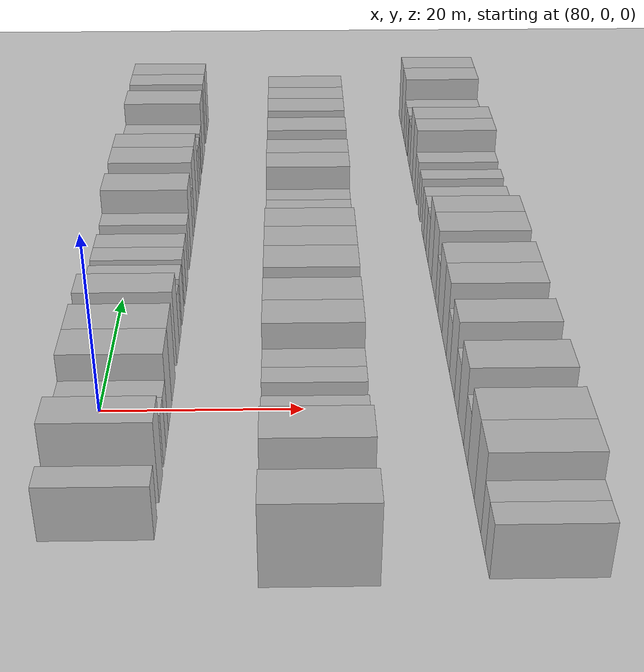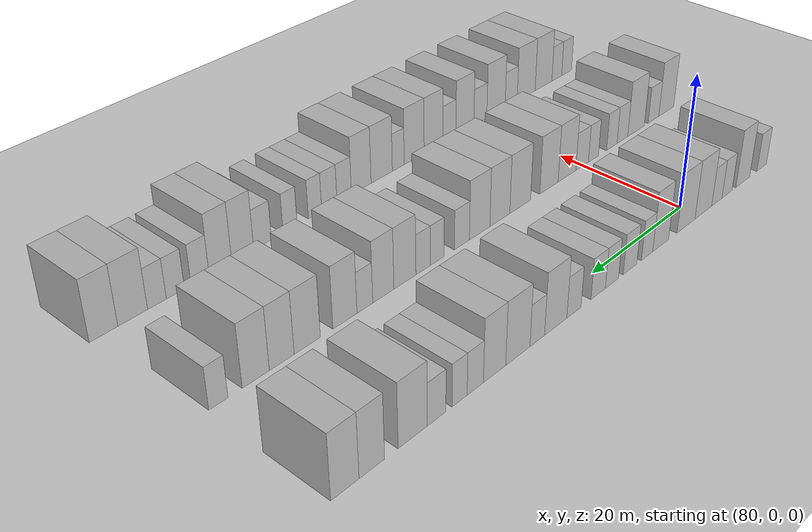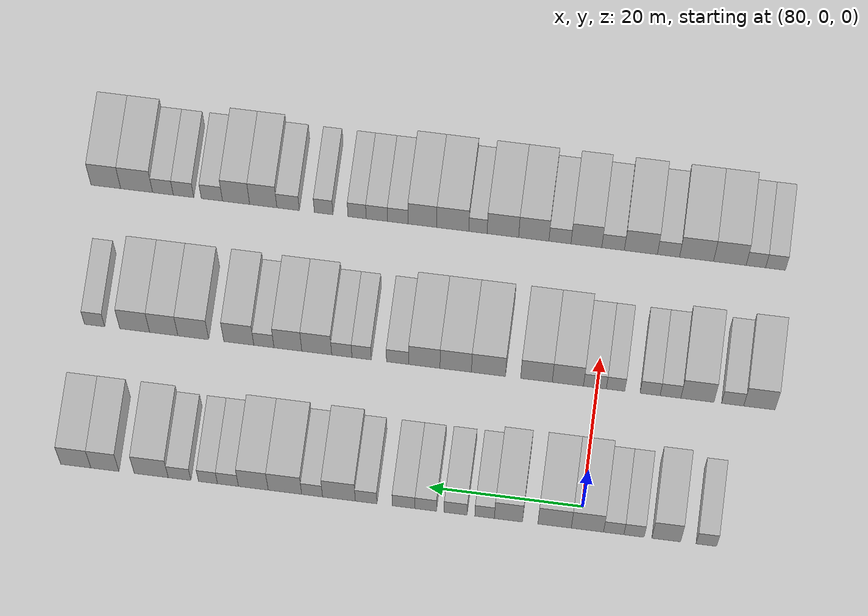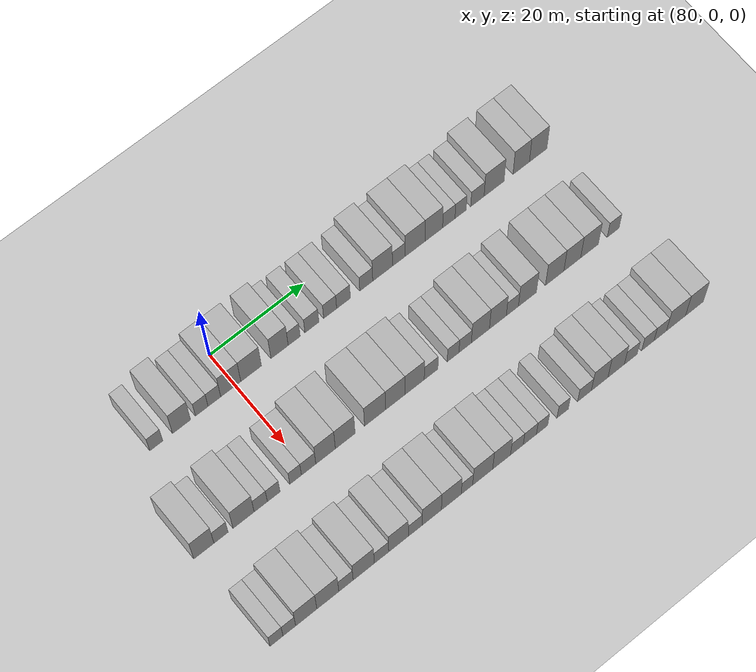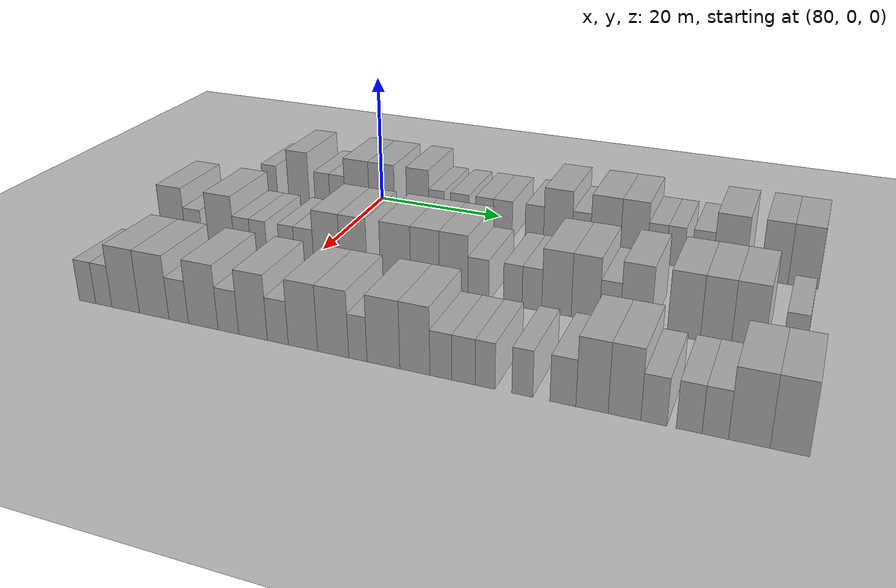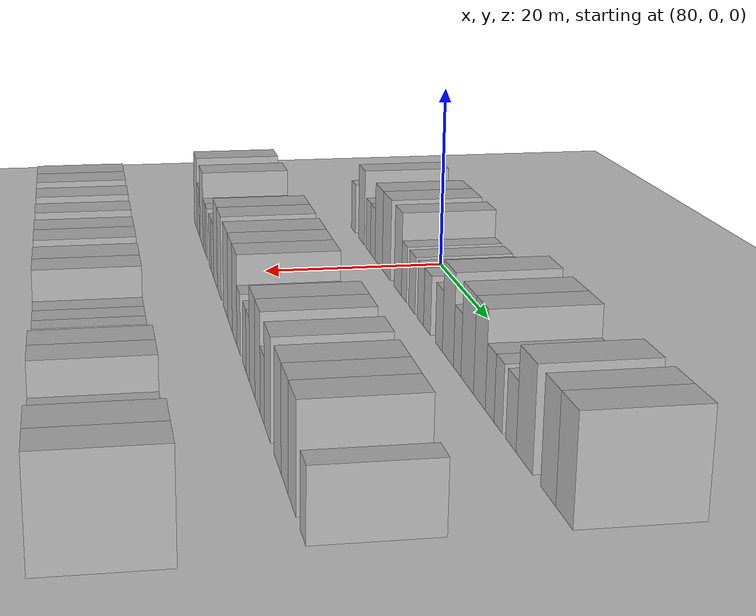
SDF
<sdf version="1.6">
 <world name="default">
  <include>
   <name>ground_plane_2</name>
   <uri>model://HANNAS_ground_plane</uri>
   <pose>100 0 0  0 0 0</pose>
  </include>
  <model name="building_618">
   <static>1</static>
   <pose>82.0000 -16.3886 0 0.000000 0.000000 0.000000</pose>
   <link name="link">
    <pose>0 0 3.00 0 0 0</pose>
    <collision name="collision"><geometry><box><size>10.0000 2.6706 6.0000</size></box></geometry></collision>
    <visual name="visual">
     <cast_shadows>0</cast_shadows>
     <geometry><box><size>10.0000 2.6706 6.0000</size></box></geometry>
     <material>
      <script>
       <uri>model://HANNAS_wall/materials/scripts</uri>
       <uri>model://HANNAS_wall/materials/textures</uri>
       <name>vrc/HANNAS_wall</name>
      </script>
     </material>
    </visual>
   </link>
  </model>
  <model name="building_619">
   <static>1</static>
   <pose>82.0000 -11.1884 0 0.000000 0.000000 0.000000</pose>
   <link name="link">
    <pose>0 0 4.50 0 0 0</pose>
    <collision name="collision"><geometry><box><size>10.0000 3.7298 9.0000</size></box></geometry></collision>
    <visual name="visual">
     <cast_shadows>0</cast_shadows>
     <geometry><box><size>10.0000 3.7298 9.0000</size></box></geometry>
     <material>
      <script>
       <uri>model://HANNAS_wall/materials/scripts</uri>
       <uri>model://HANNAS_wall/materials/textures</uri>
       <name>vrc/HANNAS_wall</name>
      </script>
     </material>
    </visual>
   </link>
  </model>
  <model name="building_620">
   <static>1</static>
   <pose>82.0000 -7.0102 0 0.000000 0.000000 0.000000</pose>
   <link name="link">
    <pose>0 0 3.00 0 0 0</pose>
    <collision name="collision"><geometry><box><size>10.0000 2.6267 6.0000</size></box></geometry></collision>
    <visual name="visual">
     <cast_shadows>0</cast_shadows>
     <geometry><box><size>10.0000 2.6267 6.0000</size></box></geometry>
     <material>
      <script>
       <uri>model://HANNAS_wall/materials/scripts</uri>
       <uri>model://HANNAS_wall/materials/textures</uri>
       <name>vrc/HANNAS_wall</name>
      </script>
     </material>
    </visual>
   </link>
  </model>
  <model name="building_621">
   <static>1</static>
   <pose>82.0000 -4.3746 0 0.000000 0.000000 0.000000</pose>
   <link name="link">
    <pose>0 0 3.00 0 0 0</pose>
    <collision name="collision"><geometry><box><size>10.0000 2.6444 6.0000</size></box></geometry></collision>
    <visual name="visual">
     <cast_shadows>0</cast_shadows>
     <geometry><box><size>10.0000 2.6444 6.0000</size></box></geometry>
     <material>
      <script>
       <uri>model://HANNAS_wall/materials/scripts</uri>
       <uri>model://HANNAS_wall/materials/textures</uri>
       <name>vrc/HANNAS_wall</name>
      </script>
     </material>
    </visual>
   </link>
  </model>
  <model name="building_622">
   <static>1</static>
   <pose>82.0000 -0.9558 0 0.000000 0.000000 0.000000</pose>
   <link name="link">
    <pose>0 0 4.50 0 0 0</pose>
    <collision name="collision"><geometry><box><size>10.0000 4.1932 9.0000</size></box></geometry></collision>
    <visual name="visual">
     <cast_shadows>0</cast_shadows>
     <geometry><box><size>10.0000 4.1932 9.0000</size></box></geometry>
     <material>
      <script>
       <uri>model://HANNAS_wall/materials/scripts</uri>
       <uri>model://HANNAS_wall/materials/textures</uri>
       <name>vrc/HANNAS_wall</name>
      </script>
     </material>
    </visual>
   </link>
  </model>
  <model name="building_623">
   <static>1</static>
   <pose>82.0000 3.3057 0 0.000000 0.000000 0.000000</pose>
   <link name="link">
    <pose>0 0 4.50 0 0 0</pose>
    <collision name="collision"><geometry><box><size>10.0000 4.3299 9.0000</size></box></geometry></collision>
    <visual name="visual">
     <cast_shadows>0</cast_shadows>
     <geometry><box><size>10.0000 4.3299 9.0000</size></box></geometry>
     <material>
      <script>
       <uri>model://HANNAS_wall/materials/scripts</uri>
       <uri>model://HANNAS_wall/materials/textures</uri>
       <name>vrc/HANNAS_wall</name>
      </script>
     </material>
    </visual>
   </link>
  </model>
  <model name="building_624">
   <static>1</static>
   <pose>82.0000 9.2955 0 0.000000 0.000000 0.000000</pose>
   <link name="link">
    <pose>0 0 4.50 0 0 0</pose>
    <collision name="collision"><geometry><box><size>10.0000 3.6496 9.0000</size></box></geometry></collision>
    <visual name="visual">
     <cast_shadows>0</cast_shadows>
     <geometry><box><size>10.0000 3.6496 9.0000</size></box></geometry>
     <material>
      <script>
       <uri>model://HANNAS_wall/materials/scripts</uri>
       <uri>model://HANNAS_wall/materials/textures</uri>
       <name>vrc/HANNAS_wall</name>
      </script>
     </material>
    </visual>
   </link>
  </model>
  <model name="building_625">
   <static>1</static>
   <pose>82.0000 12.3950 0 0.000000 0.000000 0.000000</pose>
   <link name="link">
    <pose>0 0 3.00 0 0 0</pose>
    <collision name="collision"><geometry><box><size>10.0000 2.5493 6.0000</size></box></geometry></collision>
    <visual name="visual">
     <cast_shadows>0</cast_shadows>
     <geometry><box><size>10.0000 2.5493 6.0000</size></box></geometry>
     <material>
      <script>
       <uri>model://HANNAS_wall/materials/scripts</uri>
       <uri>model://HANNAS_wall/materials/textures</uri>
       <name>vrc/HANNAS_wall</name>
      </script>
     </material>
    </visual>
   </link>
  </model>
  <model name="building_626">
   <static>1</static>
   <pose>82.0000 16.1651 0 0.000000 0.000000 0.000000</pose>
   <link name="link">
    <pose>0 0 3.00 0 0 0</pose>
    <collision name="collision"><geometry><box><size>10.0000 2.9910 6.0000</size></box></geometry></collision>
    <visual name="visual">
     <cast_shadows>0</cast_shadows>
     <geometry><box><size>10.0000 2.9910 6.0000</size></box></geometry>
     <material>
      <script>
       <uri>model://HANNAS_wall/materials/scripts</uri>
       <uri>model://HANNAS_wall/materials/textures</uri>
       <name>vrc/HANNAS_wall</name>
      </script>
     </material>
    </visual>
   </link>
  </model>
  <model name="building_627">
   <static>1</static>
   <pose>82.0000 20.0534 0 0.000000 0.000000 0.000000</pose>
   <link name="link">
    <pose>0 0 3.00 0 0 0</pose>
    <collision name="collision"><geometry><box><size>10.0000 2.7856 6.0000</size></box></geometry></collision>
    <visual name="visual">
     <cast_shadows>0</cast_shadows>
     <geometry><box><size>10.0000 2.7856 6.0000</size></box></geometry>
     <material>
      <script>
       <uri>model://HANNAS_wall/materials/scripts</uri>
       <uri>model://HANNAS_wall/materials/textures</uri>
       <name>vrc/HANNAS_wall</name>
      </script>
     </material>
    </visual>
   </link>
  </model>
  <model name="building_628">
   <static>1</static>
   <pose>82.0000 22.9259 0 0.000000 0.000000 0.000000</pose>
   <link name="link">
    <pose>0 0 3.00 0 0 0</pose>
    <collision name="collision"><geometry><box><size>10.0000 2.9593 6.0000</size></box></geometry></collision>
    <visual name="visual">
     <cast_shadows>0</cast_shadows>
     <geometry><box><size>10.0000 2.9593 6.0000</size></box></geometry>
     <material>
      <script>
       <uri>model://HANNAS_wall/materials/scripts</uri>
       <uri>model://HANNAS_wall/materials/textures</uri>
       <name>vrc/HANNAS_wall</name>
      </script>
     </material>
    </visual>
   </link>
  </model>
  <model name="building_629">
   <static>1</static>
   <pose>82.0000 27.8136 0 0.000000 0.000000 0.000000</pose>
   <link name="link">
    <pose>0 0 3.00 0 0 0</pose>
    <collision name="collision"><geometry><box><size>10.0000 2.8160 6.0000</size></box></geometry></collision>
    <visual name="visual">
     <cast_shadows>0</cast_shadows>
     <geometry><box><size>10.0000 2.8160 6.0000</size></box></geometry>
     <material>
      <script>
       <uri>model://HANNAS_wall/materials/scripts</uri>
       <uri>model://HANNAS_wall/materials/textures</uri>
       <name>vrc/HANNAS_wall</name>
      </script>
     </material>
    </visual>
   </link>
  </model>
  <model name="building_630">
   <static>1</static>
   <pose>82.0000 31.3580 0 0.000000 0.000000 0.000000</pose>
   <link name="link">
    <pose>0 0 4.50 0 0 0</pose>
    <collision name="collision"><geometry><box><size>10.0000 4.2728 9.0000</size></box></geometry></collision>
    <visual name="visual">
     <cast_shadows>0</cast_shadows>
     <geometry><box><size>10.0000 4.2728 9.0000</size></box></geometry>
     <material>
      <script>
       <uri>model://HANNAS_wall/materials/scripts</uri>
       <uri>model://HANNAS_wall/materials/textures</uri>
       <name>vrc/HANNAS_wall</name>
      </script>
     </material>
    </visual>
   </link>
  </model>
  <model name="building_631">
   <static>1</static>
   <pose>82.0000 34.8561 0 0.000000 0.000000 0.000000</pose>
   <link name="link">
    <pose>0 0 3.00 0 0 0</pose>
    <collision name="collision"><geometry><box><size>10.0000 2.7236 6.0000</size></box></geometry></collision>
    <visual name="visual">
     <cast_shadows>0</cast_shadows>
     <geometry><box><size>10.0000 2.7236 6.0000</size></box></geometry>
     <material>
      <script>
       <uri>model://HANNAS_wall/materials/scripts</uri>
       <uri>model://HANNAS_wall/materials/textures</uri>
       <name>vrc/HANNAS_wall</name>
      </script>
     </material>
    </visual>
   </link>
  </model>
  <model name="building_632">
   <static>1</static>
   <pose>82.0000 38.4014 0 0.000000 0.000000 0.000000</pose>
   <link name="link">
    <pose>0 0 4.50 0 0 0</pose>
    <collision name="collision"><geometry><box><size>10.0000 4.3670 9.0000</size></box></geometry></collision>
    <visual name="visual">
     <cast_shadows>0</cast_shadows>
     <geometry><box><size>10.0000 4.3670 9.0000</size></box></geometry>
     <material>
      <script>
       <uri>model://HANNAS_wall/materials/scripts</uri>
       <uri>model://HANNAS_wall/materials/textures</uri>
       <name>vrc/HANNAS_wall</name>
      </script>
     </material>
    </visual>
   </link>
  </model>
  <model name="building_633">
   <static>1</static>
   <pose>82.0000 42.5238 0 0.000000 0.000000 0.000000</pose>
   <link name="link">
    <pose>0 0 4.50 0 0 0</pose>
    <collision name="collision"><geometry><box><size>10.0000 3.8777 9.0000</size></box></geometry></collision>
    <visual name="visual">
     <cast_shadows>0</cast_shadows>
     <geometry><box><size>10.0000 3.8777 9.0000</size></box></geometry>
     <material>
      <script>
       <uri>model://HANNAS_wall/materials/scripts</uri>
       <uri>model://HANNAS_wall/materials/textures</uri>
       <name>vrc/HANNAS_wall</name>
      </script>
     </material>
    </visual>
   </link>
  </model>
  <model name="building_634">
   <static>1</static>
   <pose>82.0000 45.8322 0 0.000000 0.000000 0.000000</pose>
   <link name="link">
    <pose>0 0 3.00 0 0 0</pose>
    <collision name="collision"><geometry><box><size>10.0000 2.7390 6.0000</size></box></geometry></collision>
    <visual name="visual">
     <cast_shadows>0</cast_shadows>
     <geometry><box><size>10.0000 2.7390 6.0000</size></box></geometry>
     <material>
      <script>
       <uri>model://HANNAS_wall/materials/scripts</uri>
       <uri>model://HANNAS_wall/materials/textures</uri>
       <name>vrc/HANNAS_wall</name>
      </script>
     </material>
    </visual>
   </link>
  </model>
  <model name="building_635">
   <static>1</static>
   <pose>82.0000 48.4375 0 0.000000 0.000000 0.000000</pose>
   <link name="link">
    <pose>0 0 3.00 0 0 0</pose>
    <collision name="collision"><geometry><box><size>10.0000 2.4715 6.0000</size></box></geometry></collision>
    <visual name="visual">
     <cast_shadows>0</cast_shadows>
     <geometry><box><size>10.0000 2.4715 6.0000</size></box></geometry>
     <material>
      <script>
       <uri>model://HANNAS_wall/materials/scripts</uri>
       <uri>model://HANNAS_wall/materials/textures</uri>
       <name>vrc/HANNAS_wall</name>
      </script>
     </material>
    </visual>
   </link>
  </model>
  <model name="building_636">
   <static>1</static>
   <pose>82.0000 52.1549 0 0.000000 0.000000 0.000000</pose>
   <link name="link">
    <pose>0 0 3.00 0 0 0</pose>
    <collision name="collision"><geometry><box><size>10.0000 2.9633 6.0000</size></box></geometry></collision>
    <visual name="visual">
     <cast_shadows>0</cast_shadows>
     <geometry><box><size>10.0000 2.9633 6.0000</size></box></geometry>
     <material>
      <script>
       <uri>model://HANNAS_wall/materials/scripts</uri>
       <uri>model://HANNAS_wall/materials/textures</uri>
       <name>vrc/HANNAS_wall</name>
      </script>
     </material>
    </visual>
   </link>
  </model>
  <model name="building_637">
   <static>1</static>
   <pose>82.0000 55.8590 0 0.000000 0.000000 0.000000</pose>
   <link name="link">
    <pose>0 0 4.50 0 0 0</pose>
    <collision name="collision"><geometry><box><size>10.0000 4.4450 9.0000</size></box></geometry></collision>
    <visual name="visual">
     <cast_shadows>0</cast_shadows>
     <geometry><box><size>10.0000 4.4450 9.0000</size></box></geometry>
     <material>
      <script>
       <uri>model://HANNAS_wall/materials/scripts</uri>
       <uri>model://HANNAS_wall/materials/textures</uri>
       <name>vrc/HANNAS_wall</name>
      </script>
     </material>
    </visual>
   </link>
  </model>
  <model name="building_638">
   <static>1</static>
   <pose>82.0000 61.9210 0 0.000000 0.000000 0.000000</pose>
   <link name="link">
    <pose>0 0 4.50 0 0 0</pose>
    <collision name="collision"><geometry><box><size>10.0000 3.6788 9.0000</size></box></geometry></collision>
    <visual name="visual">
     <cast_shadows>0</cast_shadows>
     <geometry><box><size>10.0000 3.6788 9.0000</size></box></geometry>
     <material>
      <script>
       <uri>model://HANNAS_wall/materials/scripts</uri>
       <uri>model://HANNAS_wall/materials/textures</uri>
       <name>vrc/HANNAS_wall</name>
      </script>
     </material>
    </visual>
   </link>
  </model>
  <model name="building_639">
   <static>1</static>
   <pose>82.0000 65.7318 0 0.000000 0.000000 0.000000</pose>
   <link name="link">
    <pose>0 0 4.50 0 0 0</pose>
    <collision name="collision"><geometry><box><size>10.0000 3.9429 9.0000</size></box></geometry></collision>
    <visual name="visual">
     <cast_shadows>0</cast_shadows>
     <geometry><box><size>10.0000 3.9429 9.0000</size></box></geometry>
     <material>
      <script>
       <uri>model://HANNAS_wall/materials/scripts</uri>
       <uri>model://HANNAS_wall/materials/textures</uri>
       <name>vrc/HANNAS_wall</name>
      </script>
     </material>
    </visual>
   </link>
  </model>
  <model name="building_791">
   <static>1</static>
   <pose>101.0000 -21.2499 0 0.000000 0.000000 0.000000</pose>
   <link name="link">
    <pose>0 0 4.50 0 0 0</pose>
    <collision name="collision"><geometry><box><size>10.0000 4.1037 9.0000</size></box></geometry></collision>
    <visual name="visual">
     <cast_shadows>0</cast_shadows>
     <geometry><box><size>10.0000 4.1037 9.0000</size></box></geometry>
     <material>
      <script>
       <uri>model://HANNAS_wall/materials/scripts</uri>
       <uri>model://HANNAS_wall/materials/textures</uri>
       <name>vrc/HANNAS_wall</name>
      </script>
     </material>
    </visual>
   </link>
  </model>
  <model name="building_792">
   <static>1</static>
   <pose>101.0000 -17.7516 0 0.000000 0.000000 0.000000</pose>
   <link name="link">
    <pose>0 0 3.00 0 0 0</pose>
    <collision name="collision"><geometry><box><size>10.0000 2.8929 6.0000</size></box></geometry></collision>
    <visual name="visual">
     <cast_shadows>0</cast_shadows>
     <geometry><box><size>10.0000 2.8929 6.0000</size></box></geometry>
     <material>
      <script>
       <uri>model://HANNAS_wall/materials/scripts</uri>
       <uri>model://HANNAS_wall/materials/textures</uri>
       <name>vrc/HANNAS_wall</name>
      </script>
     </material>
    </visual>
   </link>
  </model>
  <model name="building_793">
   <static>1</static>
   <pose>101.0000 -13.1393 0 0.000000 0.000000 0.000000</pose>
   <link name="link">
    <pose>0 0 4.50 0 0 0</pose>
    <collision name="collision"><geometry><box><size>10.0000 4.3315 9.0000</size></box></geometry></collision>
    <visual name="visual">
     <cast_shadows>0</cast_shadows>
     <geometry><box><size>10.0000 4.3315 9.0000</size></box></geometry>
     <material>
      <script>
       <uri>model://HANNAS_wall/materials/scripts</uri>
       <uri>model://HANNAS_wall/materials/textures</uri>
       <name>vrc/HANNAS_wall</name>
      </script>
     </material>
    </visual>
   </link>
  </model>
  <model name="building_794">
   <static>1</static>
   <pose>101.0000 -9.6124 0 0.000000 0.000000 0.000000</pose>
   <link name="link">
    <pose>0 0 3.00 0 0 0</pose>
    <collision name="collision"><geometry><box><size>10.0000 2.7224 6.0000</size></box></geometry></collision>
    <visual name="visual">
     <cast_shadows>0</cast_shadows>
     <geometry><box><size>10.0000 2.7224 6.0000</size></box></geometry>
     <material>
      <script>
       <uri>model://HANNAS_wall/materials/scripts</uri>
       <uri>model://HANNAS_wall/materials/textures</uri>
       <name>vrc/HANNAS_wall</name>
      </script>
     </material>
    </visual>
   </link>
  </model>
  <model name="building_795">
   <static>1</static>
   <pose>101.0000 -6.9386 0 0.000000 0.000000 0.000000</pose>
   <link name="link">
    <pose>0 0 3.00 0 0 0</pose>
    <collision name="collision"><geometry><box><size>10.0000 2.6252 6.0000</size></box></geometry></collision>
    <visual name="visual">
     <cast_shadows>0</cast_shadows>
     <geometry><box><size>10.0000 2.6252 6.0000</size></box></geometry>
     <material>
      <script>
       <uri>model://HANNAS_wall/materials/scripts</uri>
       <uri>model://HANNAS_wall/materials/textures</uri>
       <name>vrc/HANNAS_wall</name>
      </script>
     </material>
    </visual>
   </link>
  </model>
  <model name="building_796">
   <static>1</static>
   <pose>101.0000 -2.4132 0 0.000000 0.000000 0.000000</pose>
   <link name="link">
    <pose>0 0 3.00 0 0 0</pose>
    <collision name="collision"><geometry><box><size>10.0000 2.4256 6.0000</size></box></geometry></collision>
    <visual name="visual">
     <cast_shadows>0</cast_shadows>
     <geometry><box><size>10.0000 2.4256 6.0000</size></box></geometry>
     <material>
      <script>
       <uri>model://HANNAS_wall/materials/scripts</uri>
       <uri>model://HANNAS_wall/materials/textures</uri>
       <name>vrc/HANNAS_wall</name>
      </script>
     </material>
    </visual>
   </link>
  </model>
  <model name="building_797">
   <static>1</static>
   <pose>101.0000 0.2977 0 0.000000 0.000000 0.000000</pose>
   <link name="link">
    <pose>0 0 3.00 0 0 0</pose>
    <collision name="collision"><geometry><box><size>10.0000 2.9961 6.0000</size></box></geometry></collision>
    <visual name="visual">
     <cast_shadows>0</cast_shadows>
     <geometry><box><size>10.0000 2.9961 6.0000</size></box></geometry>
     <material>
      <script>
       <uri>model://HANNAS_wall/materials/scripts</uri>
       <uri>model://HANNAS_wall/materials/textures</uri>
       <name>vrc/HANNAS_wall</name>
      </script>
     </material>
    </visual>
   </link>
  </model>
  <model name="building_798">
   <static>1</static>
   <pose>101.0000 3.8407 0 0.000000 0.000000 0.000000</pose>
   <link name="link">
    <pose>0 0 4.50 0 0 0</pose>
    <collision name="collision"><geometry><box><size>10.0000 4.0899 9.0000</size></box></geometry></collision>
    <visual name="visual">
     <cast_shadows>0</cast_shadows>
     <geometry><box><size>10.0000 4.0899 9.0000</size></box></geometry>
     <material>
      <script>
       <uri>model://HANNAS_wall/materials/scripts</uri>
       <uri>model://HANNAS_wall/materials/textures</uri>
       <name>vrc/HANNAS_wall</name>
      </script>
     </material>
    </visual>
   </link>
  </model>
  <model name="building_799">
   <static>1</static>
   <pose>101.0000 7.9549 0 0.000000 0.000000 0.000000</pose>
   <link name="link">
    <pose>0 0 4.50 0 0 0</pose>
    <collision name="collision"><geometry><box><size>10.0000 4.1384 9.0000</size></box></geometry></collision>
    <visual name="visual">
     <cast_shadows>0</cast_shadows>
     <geometry><box><size>10.0000 4.1384 9.0000</size></box></geometry>
     <material>
      <script>
       <uri>model://HANNAS_wall/materials/scripts</uri>
       <uri>model://HANNAS_wall/materials/textures</uri>
       <name>vrc/HANNAS_wall</name>
      </script>
     </material>
    </visual>
   </link>
  </model>
  <model name="building_800">
   <static>1</static>
   <pose>101.0000 14.2550 0 0.000000 0.000000 0.000000</pose>
   <link name="link">
    <pose>0 0 4.50 0 0 0</pose>
    <collision name="collision"><geometry><box><size>10.0000 4.4617 9.0000</size></box></geometry></collision>
    <visual name="visual">
     <cast_shadows>0</cast_shadows>
     <geometry><box><size>10.0000 4.4617 9.0000</size></box></geometry>
     <material>
      <script>
       <uri>model://HANNAS_wall/materials/scripts</uri>
       <uri>model://HANNAS_wall/materials/textures</uri>
       <name>vrc/HANNAS_wall</name>
      </script>
     </material>
    </visual>
   </link>
  </model>
  <model name="building_801">
   <static>1</static>
   <pose>101.0000 18.5548 0 0.000000 0.000000 0.000000</pose>
   <link name="link">
    <pose>0 0 4.50 0 0 0</pose>
    <collision name="collision"><geometry><box><size>10.0000 4.1380 9.0000</size></box></geometry></collision>
    <visual name="visual">
     <cast_shadows>0</cast_shadows>
     <geometry><box><size>10.0000 4.1380 9.0000</size></box></geometry>
     <material>
      <script>
       <uri>model://HANNAS_wall/materials/scripts</uri>
       <uri>model://HANNAS_wall/materials/textures</uri>
       <name>vrc/HANNAS_wall</name>
      </script>
     </material>
    </visual>
   </link>
  </model>
  <model name="building_802">
   <static>1</static>
   <pose>101.0000 22.6761 0 0.000000 0.000000 0.000000</pose>
   <link name="link">
    <pose>0 0 4.50 0 0 0</pose>
    <collision name="collision"><geometry><box><size>10.0000 4.1047 9.0000</size></box></geometry></collision>
    <visual name="visual">
     <cast_shadows>0</cast_shadows>
     <geometry><box><size>10.0000 4.1047 9.0000</size></box></geometry>
     <material>
      <script>
       <uri>model://HANNAS_wall/materials/scripts</uri>
       <uri>model://HANNAS_wall/materials/textures</uri>
       <name>vrc/HANNAS_wall</name>
      </script>
     </material>
    </visual>
   </link>
  </model>
  <model name="building_803">
   <static>1</static>
   <pose>101.0000 26.1918 0 0.000000 0.000000 0.000000</pose>
   <link name="link">
    <pose>0 0 3.00 0 0 0</pose>
    <collision name="collision"><geometry><box><size>10.0000 2.9266 6.0000</size></box></geometry></collision>
    <visual name="visual">
     <cast_shadows>0</cast_shadows>
     <geometry><box><size>10.0000 2.9266 6.0000</size></box></geometry>
     <material>
      <script>
       <uri>model://HANNAS_wall/materials/scripts</uri>
       <uri>model://HANNAS_wall/materials/textures</uri>
       <name>vrc/HANNAS_wall</name>
      </script>
     </material>
    </visual>
   </link>
  </model>
  <model name="building_804">
   <static>1</static>
   <pose>101.0000 30.9298 0 0.000000 0.000000 0.000000</pose>
   <link name="link">
    <pose>0 0 3.00 0 0 0</pose>
    <collision name="collision"><geometry><box><size>10.0000 2.5495 6.0000</size></box></geometry></collision>
    <visual name="visual">
     <cast_shadows>0</cast_shadows>
     <geometry><box><size>10.0000 2.5495 6.0000</size></box></geometry>
     <material>
      <script>
       <uri>model://HANNAS_wall/materials/scripts</uri>
       <uri>model://HANNAS_wall/materials/textures</uri>
       <name>vrc/HANNAS_wall</name>
      </script>
     </material>
    </visual>
   </link>
  </model>
  <model name="building_805">
   <static>1</static>
   <pose>101.0000 33.5389 0 0.000000 0.000000 0.000000</pose>
   <link name="link">
    <pose>0 0 3.00 0 0 0</pose>
    <collision name="collision"><geometry><box><size>10.0000 2.6688 6.0000</size></box></geometry></collision>
    <visual name="visual">
     <cast_shadows>0</cast_shadows>
     <geometry><box><size>10.0000 2.6688 6.0000</size></box></geometry>
     <material>
      <script>
       <uri>model://HANNAS_wall/materials/scripts</uri>
       <uri>model://HANNAS_wall/materials/textures</uri>
       <name>vrc/HANNAS_wall</name>
      </script>
     </material>
    </visual>
   </link>
  </model>
  <model name="building_806">
   <static>1</static>
   <pose>101.0000 36.8400 0 0.000000 0.000000 0.000000</pose>
   <link name="link">
    <pose>0 0 4.50 0 0 0</pose>
    <collision name="collision"><geometry><box><size>10.0000 3.9333 9.0000</size></box></geometry></collision>
    <visual name="visual">
     <cast_shadows>0</cast_shadows>
     <geometry><box><size>10.0000 3.9333 9.0000</size></box></geometry>
     <material>
      <script>
       <uri>model://HANNAS_wall/materials/scripts</uri>
       <uri>model://HANNAS_wall/materials/textures</uri>
       <name>vrc/HANNAS_wall</name>
      </script>
     </material>
    </visual>
   </link>
  </model>
  <model name="building_807">
   <static>1</static>
   <pose>101.0000 40.6414 0 0.000000 0.000000 0.000000</pose>
   <link name="link">
    <pose>0 0 4.50 0 0 0</pose>
    <collision name="collision"><geometry><box><size>10.0000 3.6696 9.0000</size></box></geometry></collision>
    <visual name="visual">
     <cast_shadows>0</cast_shadows>
     <geometry><box><size>10.0000 3.6696 9.0000</size></box></geometry>
     <material>
      <script>
       <uri>model://HANNAS_wall/materials/scripts</uri>
       <uri>model://HANNAS_wall/materials/textures</uri>
       <name>vrc/HANNAS_wall</name>
      </script>
     </material>
    </visual>
   </link>
  </model>
  <model name="building_808">
   <static>1</static>
   <pose>101.0000 43.8041 0 0.000000 0.000000 0.000000</pose>
   <link name="link">
    <pose>0 0 3.00 0 0 0</pose>
    <collision name="collision"><geometry><box><size>10.0000 2.6558 6.0000</size></box></geometry></collision>
    <visual name="visual">
     <cast_shadows>0</cast_shadows>
     <geometry><box><size>10.0000 2.6558 6.0000</size></box></geometry>
     <material>
      <script>
       <uri>model://HANNAS_wall/materials/scripts</uri>
       <uri>model://HANNAS_wall/materials/textures</uri>
       <name>vrc/HANNAS_wall</name>
      </script>
     </material>
    </visual>
   </link>
  </model>
  <model name="building_809">
   <static>1</static>
   <pose>101.0000 47.1085 0 0.000000 0.000000 0.000000</pose>
   <link name="link">
    <pose>0 0 4.50 0 0 0</pose>
    <collision name="collision"><geometry><box><size>10.0000 3.9530 9.0000</size></box></geometry></collision>
    <visual name="visual">
     <cast_shadows>0</cast_shadows>
     <geometry><box><size>10.0000 3.9530 9.0000</size></box></geometry>
     <material>
      <script>
       <uri>model://HANNAS_wall/materials/scripts</uri>
       <uri>model://HANNAS_wall/materials/textures</uri>
       <name>vrc/HANNAS_wall</name>
      </script>
     </material>
    </visual>
   </link>
  </model>
  <model name="building_810">
   <static>1</static>
   <pose>101.0000 53.1212 0 0.000000 0.000000 0.000000</pose>
   <link name="link">
    <pose>0 0 4.50 0 0 0</pose>
    <collision name="collision"><geometry><box><size>10.0000 4.0725 9.0000</size></box></geometry></collision>
    <visual name="visual">
     <cast_shadows>0</cast_shadows>
     <geometry><box><size>10.0000 4.0725 9.0000</size></box></geometry>
     <material>
      <script>
       <uri>model://HANNAS_wall/materials/scripts</uri>
       <uri>model://HANNAS_wall/materials/textures</uri>
       <name>vrc/HANNAS_wall</name>
      </script>
     </material>
    </visual>
   </link>
  </model>
  <model name="building_811">
   <static>1</static>
   <pose>101.0000 57.0212 0 0.000000 0.000000 0.000000</pose>
   <link name="link">
    <pose>0 0 4.50 0 0 0</pose>
    <collision name="collision"><geometry><box><size>10.0000 3.7273 9.0000</size></box></geometry></collision>
    <visual name="visual">
     <cast_shadows>0</cast_shadows>
     <geometry><box><size>10.0000 3.7273 9.0000</size></box></geometry>
     <material>
      <script>
       <uri>model://HANNAS_wall/materials/scripts</uri>
       <uri>model://HANNAS_wall/materials/textures</uri>
       <name>vrc/HANNAS_wall</name>
      </script>
     </material>
    </visual>
   </link>
  </model>
  <model name="building_812">
   <static>1</static>
   <pose>101.0000 60.8581 0 0.000000 0.000000 0.000000</pose>
   <link name="link">
    <pose>0 0 4.50 0 0 0</pose>
    <collision name="collision"><geometry><box><size>10.0000 3.9466 9.0000</size></box></geometry></collision>
    <visual name="visual">
     <cast_shadows>0</cast_shadows>
     <geometry><box><size>10.0000 3.9466 9.0000</size></box></geometry>
     <material>
      <script>
       <uri>model://HANNAS_wall/materials/scripts</uri>
       <uri>model://HANNAS_wall/materials/textures</uri>
       <name>vrc/HANNAS_wall</name>
      </script>
     </material>
    </visual>
   </link>
  </model>
  <model name="building_813">
   <static>1</static>
   <pose>101.0000 66.1610 0 0.000000 0.000000 0.000000</pose>
   <link name="link">
    <pose>0 0 3.00 0 0 0</pose>
    <collision name="collision"><geometry><box><size>10.0000 2.6592 6.0000</size></box></geometry></collision>
    <visual name="visual">
     <cast_shadows>0</cast_shadows>
     <geometry><box><size>10.0000 2.6592 6.0000</size></box></geometry>
     <material>
      <script>
       <uri>model://HANNAS_wall/materials/scripts</uri>
       <uri>model://HANNAS_wall/materials/textures</uri>
       <name>vrc/HANNAS_wall</name>
      </script>
     </material>
    </visual>
   </link>
  </model>
  <model name="building_968">
   <static>1</static>
   <pose>120.0000 -21.3759 0 0.000000 0.000000 0.000000</pose>
   <link name="link">
    <pose>0 0 3.00 0 0 0</pose>
    <collision name="collision"><geometry><box><size>10.0000 2.6189 6.0000</size></box></geometry></collision>
    <visual name="visual">
     <cast_shadows>0</cast_shadows>
     <geometry><box><size>10.0000 2.6189 6.0000</size></box></geometry>
     <material>
      <script>
       <uri>model://HANNAS_wall/materials/scripts</uri>
       <uri>model://HANNAS_wall/materials/textures</uri>
       <name>vrc/HANNAS_wall</name>
      </script>
     </material>
    </visual>
   </link>
  </model>
  <model name="building_969">
   <static>1</static>
   <pose>120.0000 -18.7778 0 0.000000 0.000000 0.000000</pose>
   <link name="link">
    <pose>0 0 3.00 0 0 0</pose>
    <collision name="collision"><geometry><box><size>10.0000 2.5773 6.0000</size></box></geometry></collision>
    <visual name="visual">
     <cast_shadows>0</cast_shadows>
     <geometry><box><size>10.0000 2.5773 6.0000</size></box></geometry>
     <material>
      <script>
       <uri>model://HANNAS_wall/materials/scripts</uri>
       <uri>model://HANNAS_wall/materials/textures</uri>
       <name>vrc/HANNAS_wall</name>
      </script>
     </material>
    </visual>
   </link>
  </model>
  <model name="building_970">
   <static>1</static>
   <pose>120.0000 -15.3352 0 0.000000 0.000000 0.000000</pose>
   <link name="link">
    <pose>0 0 4.50 0 0 0</pose>
    <collision name="collision"><geometry><box><size>10.0000 4.3079 9.0000</size></box></geometry></collision>
    <visual name="visual">
     <cast_shadows>0</cast_shadows>
     <geometry><box><size>10.0000 4.3079 9.0000</size></box></geometry>
     <material>
      <script>
       <uri>model://HANNAS_wall/materials/scripts</uri>
       <uri>model://HANNAS_wall/materials/textures</uri>
       <name>vrc/HANNAS_wall</name>
      </script>
     </material>
    </visual>
   </link>
  </model>
  <model name="building_971">
   <static>1</static>
   <pose>120.0000 -10.9319 0 0.000000 0.000000 0.000000</pose>
   <link name="link">
    <pose>0 0 4.50 0 0 0</pose>
    <collision name="collision"><geometry><box><size>10.0000 4.4986 9.0000</size></box></geometry></collision>
    <visual name="visual">
     <cast_shadows>0</cast_shadows>
     <geometry><box><size>10.0000 4.4986 9.0000</size></box></geometry>
     <material>
      <script>
       <uri>model://HANNAS_wall/materials/scripts</uri>
       <uri>model://HANNAS_wall/materials/textures</uri>
       <name>vrc/HANNAS_wall</name>
      </script>
     </material>
    </visual>
   </link>
  </model>
  <model name="building_972">
   <static>1</static>
   <pose>120.0000 -7.2173 0 0.000000 0.000000 0.000000</pose>
   <link name="link">
    <pose>0 0 3.00 0 0 0</pose>
    <collision name="collision"><geometry><box><size>10.0000 2.9306 6.0000</size></box></geometry></collision>
    <visual name="visual">
     <cast_shadows>0</cast_shadows>
     <geometry><box><size>10.0000 2.9306 6.0000</size></box></geometry>
     <material>
      <script>
       <uri>model://HANNAS_wall/materials/scripts</uri>
       <uri>model://HANNAS_wall/materials/textures</uri>
       <name>vrc/HANNAS_wall</name>
      </script>
     </material>
    </visual>
   </link>
  </model>
  <model name="building_973">
   <static>1</static>
   <pose>120.0000 -3.5664 0 0.000000 0.000000 0.000000</pose>
   <link name="link">
    <pose>0 0 4.50 0 0 0</pose>
    <collision name="collision"><geometry><box><size>10.0000 4.3713 9.0000</size></box></geometry></collision>
    <visual name="visual">
     <cast_shadows>0</cast_shadows>
     <geometry><box><size>10.0000 4.3713 9.0000</size></box></geometry>
     <material>
      <script>
       <uri>model://HANNAS_wall/materials/scripts</uri>
       <uri>model://HANNAS_wall/materials/textures</uri>
       <name>vrc/HANNAS_wall</name>
      </script>
     </material>
    </visual>
   </link>
  </model>
  <model name="building_974">
   <static>1</static>
   <pose>120.0000 0.1140 0 0.000000 0.000000 0.000000</pose>
   <link name="link">
    <pose>0 0 3.00 0 0 0</pose>
    <collision name="collision"><geometry><box><size>10.0000 2.9895 6.0000</size></box></geometry></collision>
    <visual name="visual">
     <cast_shadows>0</cast_shadows>
     <geometry><box><size>10.0000 2.9895 6.0000</size></box></geometry>
     <material>
      <script>
       <uri>model://HANNAS_wall/materials/scripts</uri>
       <uri>model://HANNAS_wall/materials/textures</uri>
       <name>vrc/HANNAS_wall</name>
      </script>
     </material>
    </visual>
   </link>
  </model>
  <model name="building_975">
   <static>1</static>
   <pose>120.0000 3.6472 0 0.000000 0.000000 0.000000</pose>
   <link name="link">
    <pose>0 0 4.50 0 0 0</pose>
    <collision name="collision"><geometry><box><size>10.0000 4.0770 9.0000</size></box></geometry></collision>
    <visual name="visual">
     <cast_shadows>0</cast_shadows>
     <geometry><box><size>10.0000 4.0770 9.0000</size></box></geometry>
     <material>
      <script>
       <uri>model://HANNAS_wall/materials/scripts</uri>
       <uri>model://HANNAS_wall/materials/textures</uri>
       <name>vrc/HANNAS_wall</name>
      </script>
     </material>
    </visual>
   </link>
  </model>
  <model name="building_976">
   <static>1</static>
   <pose>120.0000 7.1464 0 0.000000 0.000000 0.000000</pose>
   <link name="link">
    <pose>0 0 3.00 0 0 0</pose>
    <collision name="collision"><geometry><box><size>10.0000 2.9213 6.0000</size></box></geometry></collision>
    <visual name="visual">
     <cast_shadows>0</cast_shadows>
     <geometry><box><size>10.0000 2.9213 6.0000</size></box></geometry>
     <material>
      <script>
       <uri>model://HANNAS_wall/materials/scripts</uri>
       <uri>model://HANNAS_wall/materials/textures</uri>
       <name>vrc/HANNAS_wall</name>
      </script>
     </material>
    </visual>
   </link>
  </model>
  <model name="building_977">
   <static>1</static>
   <pose>120.0000 10.6129 0 0.000000 0.000000 0.000000</pose>
   <link name="link">
    <pose>0 0 4.50 0 0 0</pose>
    <collision name="collision"><geometry><box><size>10.0000 4.0118 9.0000</size></box></geometry></collision>
    <visual name="visual">
     <cast_shadows>0</cast_shadows>
     <geometry><box><size>10.0000 4.0118 9.0000</size></box></geometry>
     <material>
      <script>
       <uri>model://HANNAS_wall/materials/scripts</uri>
       <uri>model://HANNAS_wall/materials/textures</uri>
       <name>vrc/HANNAS_wall</name>
      </script>
     </material>
    </visual>
   </link>
  </model>
  <model name="building_978">
   <static>1</static>
   <pose>120.0000 14.7096 0 0.000000 0.000000 0.000000</pose>
   <link name="link">
    <pose>0 0 4.50 0 0 0</pose>
    <collision name="collision"><geometry><box><size>10.0000 4.1814 9.0000</size></box></geometry></collision>
    <visual name="visual">
     <cast_shadows>0</cast_shadows>
     <geometry><box><size>10.0000 4.1814 9.0000</size></box></geometry>
     <material>
      <script>
       <uri>model://HANNAS_wall/materials/scripts</uri>
       <uri>model://HANNAS_wall/materials/textures</uri>
       <name>vrc/HANNAS_wall</name>
      </script>
     </material>
    </visual>
   </link>
  </model>
  <model name="building_979">
   <static>1</static>
   <pose>120.0000 18.0089 0 0.000000 0.000000 0.000000</pose>
   <link name="link">
    <pose>0 0 3.00 0 0 0</pose>
    <collision name="collision"><geometry><box><size>10.0000 2.4173 6.0000</size></box></geometry></collision>
    <visual name="visual">
     <cast_shadows>0</cast_shadows>
     <geometry><box><size>10.0000 2.4173 6.0000</size></box></geometry>
     <material>
      <script>
       <uri>model://HANNAS_wall/materials/scripts</uri>
       <uri>model://HANNAS_wall/materials/textures</uri>
       <name>vrc/HANNAS_wall</name>
      </script>
     </material>
    </visual>
   </link>
  </model>
  <model name="building_980">
   <static>1</static>
   <pose>120.0000 21.3458 0 0.000000 0.000000 0.000000</pose>
   <link name="link">
    <pose>0 0 4.50 0 0 0</pose>
    <collision name="collision"><geometry><box><size>10.0000 4.2565 9.0000</size></box></geometry></collision>
    <visual name="visual">
     <cast_shadows>0</cast_shadows>
     <geometry><box><size>10.0000 4.2565 9.0000</size></box></geometry>
     <material>
      <script>
       <uri>model://HANNAS_wall/materials/scripts</uri>
       <uri>model://HANNAS_wall/materials/textures</uri>
       <name>vrc/HANNAS_wall</name>
      </script>
     </material>
    </visual>
   </link>
  </model>
  <model name="building_981">
   <static>1</static>
   <pose>120.0000 25.3797 0 0.000000 0.000000 0.000000</pose>
   <link name="link">
    <pose>0 0 4.50 0 0 0</pose>
    <collision name="collision"><geometry><box><size>10.0000 3.8113 9.0000</size></box></geometry></collision>
    <visual name="visual">
     <cast_shadows>0</cast_shadows>
     <geometry><box><size>10.0000 3.8113 9.0000</size></box></geometry>
     <material>
      <script>
       <uri>model://HANNAS_wall/materials/scripts</uri>
       <uri>model://HANNAS_wall/materials/textures</uri>
       <name>vrc/HANNAS_wall</name>
      </script>
     </material>
    </visual>
   </link>
  </model>
  <model name="building_982">
   <static>1</static>
   <pose>120.0000 28.6490 0 0.000000 0.000000 0.000000</pose>
   <link name="link">
    <pose>0 0 3.00 0 0 0</pose>
    <collision name="collision"><geometry><box><size>10.0000 2.7273 6.0000</size></box></geometry></collision>
    <visual name="visual">
     <cast_shadows>0</cast_shadows>
     <geometry><box><size>10.0000 2.7273 6.0000</size></box></geometry>
     <material>
      <script>
       <uri>model://HANNAS_wall/materials/scripts</uri>
       <uri>model://HANNAS_wall/materials/textures</uri>
       <name>vrc/HANNAS_wall</name>
      </script>
     </material>
    </visual>
   </link>
  </model>
  <model name="building_983">
   <static>1</static>
   <pose>120.0000 31.4329 0 0.000000 0.000000 0.000000</pose>
   <link name="link">
    <pose>0 0 3.00 0 0 0</pose>
    <collision name="collision"><geometry><box><size>10.0000 2.8404 6.0000</size></box></geometry></collision>
    <visual name="visual">
     <cast_shadows>0</cast_shadows>
     <geometry><box><size>10.0000 2.8404 6.0000</size></box></geometry>
     <material>
      <script>
       <uri>model://HANNAS_wall/materials/scripts</uri>
       <uri>model://HANNAS_wall/materials/textures</uri>
       <name>vrc/HANNAS_wall</name>
      </script>
     </material>
    </visual>
   </link>
  </model>
  <model name="building_984">
   <static>1</static>
   <pose>120.0000 34.0644 0 0.000000 0.000000 0.000000</pose>
   <link name="link">
    <pose>0 0 3.00 0 0 0</pose>
    <collision name="collision"><geometry><box><size>10.0000 2.4227 6.0000</size></box></geometry></collision>
    <visual name="visual">
     <cast_shadows>0</cast_shadows>
     <geometry><box><size>10.0000 2.4227 6.0000</size></box></geometry>
     <material>
      <script>
       <uri>model://HANNAS_wall/materials/scripts</uri>
       <uri>model://HANNAS_wall/materials/textures</uri>
       <name>vrc/HANNAS_wall</name>
      </script>
     </material>
    </visual>
   </link>
  </model>
  <model name="building_985">
   <static>1</static>
   <pose>120.0000 38.5107 0 0.000000 0.000000 0.000000</pose>
   <link name="link">
    <pose>0 0 3.00 0 0 0</pose>
    <collision name="collision"><geometry><box><size>10.0000 2.4699 6.0000</size></box></geometry></collision>
    <visual name="visual">
     <cast_shadows>0</cast_shadows>
     <geometry><box><size>10.0000 2.4699 6.0000</size></box></geometry>
     <material>
      <script>
       <uri>model://HANNAS_wall/materials/scripts</uri>
       <uri>model://HANNAS_wall/materials/textures</uri>
       <name>vrc/HANNAS_wall</name>
      </script>
     </material>
    </visual>
   </link>
  </model>
  <model name="building_986">
   <static>1</static>
   <pose>120.0000 43.2406 0 0.000000 0.000000 0.000000</pose>
   <link name="link">
    <pose>0 0 3.00 0 0 0</pose>
    <collision name="collision"><geometry><box><size>10.0000 2.9898 6.0000</size></box></geometry></collision>
    <visual name="visual">
     <cast_shadows>0</cast_shadows>
     <geometry><box><size>10.0000 2.9898 6.0000</size></box></geometry>
     <material>
      <script>
       <uri>model://HANNAS_wall/materials/scripts</uri>
       <uri>model://HANNAS_wall/materials/textures</uri>
       <name>vrc/HANNAS_wall</name>
      </script>
     </material>
    </visual>
   </link>
  </model>
  <model name="building_987">
   <static>1</static>
   <pose>120.0000 46.5490 0 0.000000 0.000000 0.000000</pose>
   <link name="link">
    <pose>0 0 4.50 0 0 0</pose>
    <collision name="collision"><geometry><box><size>10.0000 3.6271 9.0000</size></box></geometry></collision>
    <visual name="visual">
     <cast_shadows>0</cast_shadows>
     <geometry><box><size>10.0000 3.6271 9.0000</size></box></geometry>
     <material>
      <script>
       <uri>model://HANNAS_wall/materials/scripts</uri>
       <uri>model://HANNAS_wall/materials/textures</uri>
       <name>vrc/HANNAS_wall</name>
      </script>
     </material>
    </visual>
   </link>
  </model>
  <model name="building_988">
   <static>1</static>
   <pose>120.0000 50.1737 0 0.000000 0.000000 0.000000</pose>
   <link name="link">
    <pose>0 0 4.50 0 0 0</pose>
    <collision name="collision"><geometry><box><size>10.0000 3.6223 9.0000</size></box></geometry></collision>
    <visual name="visual">
     <cast_shadows>0</cast_shadows>
     <geometry><box><size>10.0000 3.6223 9.0000</size></box></geometry>
     <material>
      <script>
       <uri>model://HANNAS_wall/materials/scripts</uri>
       <uri>model://HANNAS_wall/materials/textures</uri>
       <name>vrc/HANNAS_wall</name>
      </script>
     </material>
    </visual>
   </link>
  </model>
  <model name="building_989">
   <static>1</static>
   <pose>120.0000 53.3959 0 0.000000 0.000000 0.000000</pose>
   <link name="link">
    <pose>0 0 3.00 0 0 0</pose>
    <collision name="collision"><geometry><box><size>10.0000 2.8221 6.0000</size></box></geometry></collision>
    <visual name="visual">
     <cast_shadows>0</cast_shadows>
     <geometry><box><size>10.0000 2.8221 6.0000</size></box></geometry>
     <material>
      <script>
       <uri>model://HANNAS_wall/materials/scripts</uri>
       <uri>model://HANNAS_wall/materials/textures</uri>
       <name>vrc/HANNAS_wall</name>
      </script>
     </material>
    </visual>
   </link>
  </model>
  <model name="building_990">
   <static>1</static>
   <pose>120.0000 57.1748 0 0.000000 0.000000 0.000000</pose>
   <link name="link">
    <pose>0 0 3.00 0 0 0</pose>
    <collision name="collision"><geometry><box><size>10.0000 2.7357 6.0000</size></box></geometry></collision>
    <visual name="visual">
     <cast_shadows>0</cast_shadows>
     <geometry><box><size>10.0000 2.7357 6.0000</size></box></geometry>
     <material>
      <script>
       <uri>model://HANNAS_wall/materials/scripts</uri>
       <uri>model://HANNAS_wall/materials/textures</uri>
       <name>vrc/HANNAS_wall</name>
      </script>
     </material>
    </visual>
   </link>
  </model>
  <model name="building_991">
   <static>1</static>
   <pose>120.0000 59.9222 0 0.000000 0.000000 0.000000</pose>
   <link name="link">
    <pose>0 0 3.00 0 0 0</pose>
    <collision name="collision"><geometry><box><size>10.0000 2.7590 6.0000</size></box></geometry></collision>
    <visual name="visual">
     <cast_shadows>0</cast_shadows>
     <geometry><box><size>10.0000 2.7590 6.0000</size></box></geometry>
     <material>
      <script>
       <uri>model://HANNAS_wall/materials/scripts</uri>
       <uri>model://HANNAS_wall/materials/textures</uri>
       <name>vrc/HANNAS_wall</name>
      </script>
     </material>
    </visual>
   </link>
  </model>
  <model name="building_992">
   <static>1</static>
   <pose>120.0000 63.4313 0 0.000000 0.000000 0.000000</pose>
   <link name="link">
    <pose>0 0 4.50 0 0 0</pose>
    <collision name="collision"><geometry><box><size>10.0000 4.2593 9.0000</size></box></geometry></collision>
    <visual name="visual">
     <cast_shadows>0</cast_shadows>
     <geometry><box><size>10.0000 4.2593 9.0000</size></box></geometry>
     <material>
      <script>
       <uri>model://HANNAS_wall/materials/scripts</uri>
       <uri>model://HANNAS_wall/materials/textures</uri>
       <name>vrc/HANNAS_wall</name>
      </script>
     </material>
    </visual>
   </link>
  </model>
  <model name="building_993">
   <static>1</static>
   <pose>120.0000 67.5430 0 0.000000 0.000000 0.000000</pose>
   <link name="link">
    <pose>0 0 4.50 0 0 0</pose>
    <collision name="collision"><geometry><box><size>10.0000 3.9640 9.0000</size></box></geometry></collision>
    <visual name="visual">
     <cast_shadows>0</cast_shadows>
     <geometry><box><size>10.0000 3.9640 9.0000</size></box></geometry>
     <material>
      <script>
       <uri>model://HANNAS_wall/materials/scripts</uri>
       <uri>model://HANNAS_wall/materials/textures</uri>
       <name>vrc/HANNAS_wall</name>
      </script>
     </material>
    </visual>
   </link>
  </model>
 </world>
</sdf>
